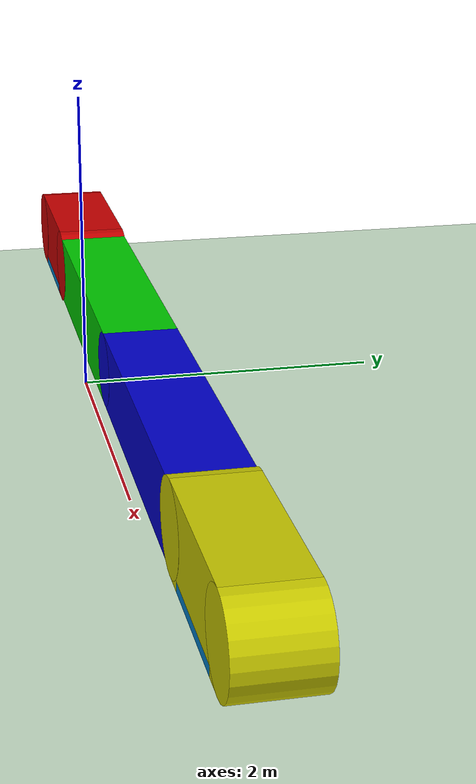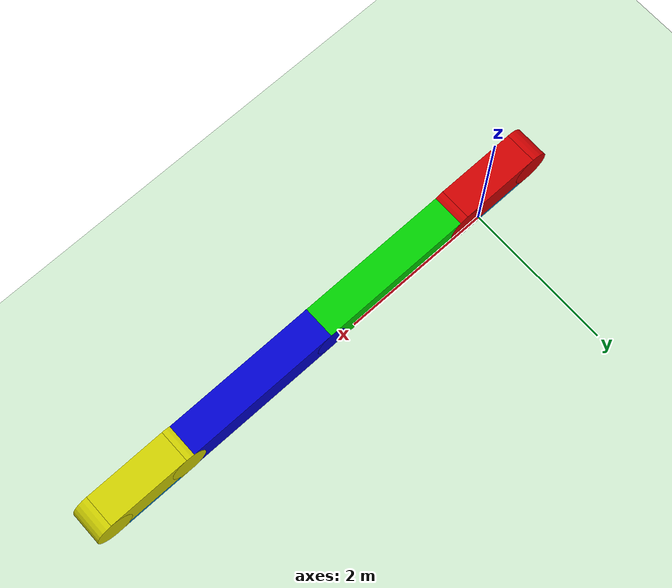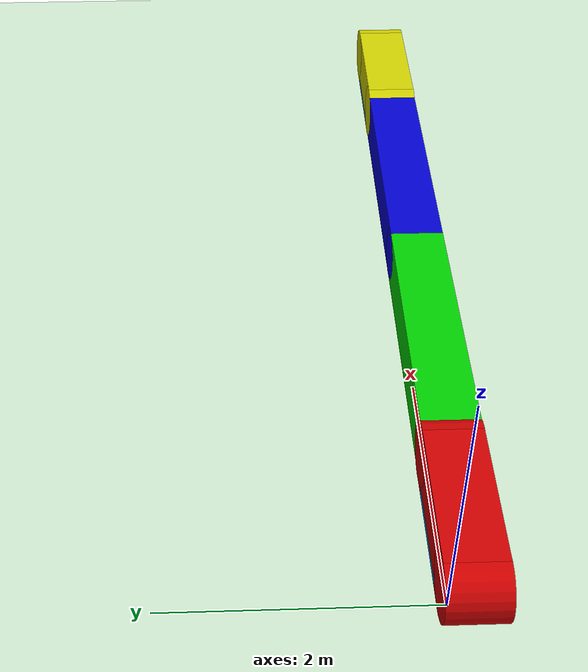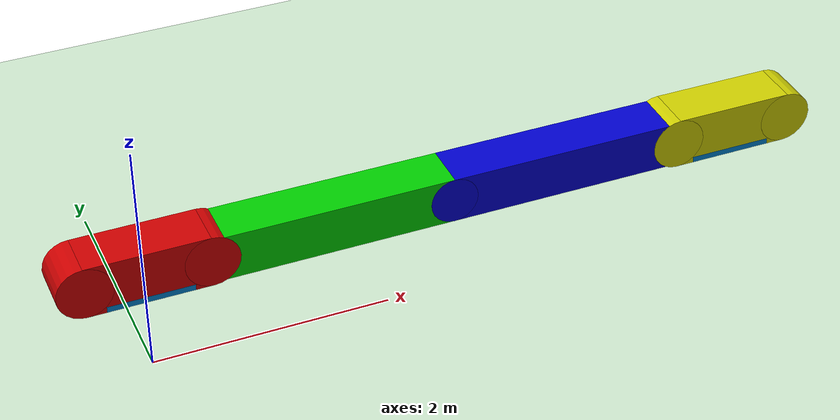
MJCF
<!-- Schema reference -->
<?xml-model href="https://raw.githubusercontent.com/CommonWealthRobotics/mujoco-xml-schema-mjcf/main/mujoco.xsd"?>

<!--A creature xml environment in MuJoCo-->
<mujoco model="2d_creature">
  <!--
  `inertiafromgeom` specifies whether body masses and inertias are inferred from their attached geoms
  or defined by explicit attribute values
  -->
  <compiler angle="degree" inertiafromgeom="true" />

  <option integrator="RK4" timestep="0.002" />

  <!-- Default attribute values for various elements -->
  <default>

    <!-- These joints are the ones connecting the inchworm segments -->
    <default class="connector_joint">
      <joint type="hinge" armature="1" damping="1" limited="true" axis="0 1 0"/>
    </default>

    <geom conaffinity="0" condim="3" density="5.0" friction="1 1 1" margin="0.01" rgba="0.8 0.4 0.8 1" />
    <motor ctrllimited="true" ctrlrange="-1.0 1.0" gear="100" />
  </default>

  <!-- Visual textures and materials -->
  <asset>
    <!-- The skybox texture -->
    <texture builtin="gradient" height="100" rgb1="1 1 1" rgb2="0 0 0" type="skybox" width="100" />

    <!--
    The checker texture used for the floor material.
    `height` and `width` determine the resolution
    -->
    <texture name="checker_tex" builtin="checker" type="2d" rgb1="0 0 0" rgb2="0.8 0.8 0.8" height="100" width="100" />

    <!--
    The checker material used for the floor geom.
    `texrepeat` determines the pattern scaling
    -->
    <material name="checker_mat" texture="checker_tex" texrepeat="1.5 1.5" texuniform="true" reflectance="0.5" shininess="1" specular="1" />
  </asset>

  <!-- The physical environment -->
  <worldbody>
    <!-- Light source -->
    <light cutoff="100" diffuse="1 1 1" dir="0 0 -1.3" directional="true" exponent="1" pos="0 0 1.3" specular="0.1 0.1 0.1" />

    <geom type="plane" size="0 8 1" conaffinity="1" condim="3" material="checker_mat" rgba="0.8 0.9 0.8 1" />

    <!-- Segment 1: Left Foot -->
    <body name="left_foot" pos="0 0 1">
      <!-- Left end of foot -->
      <geom type="cylinder" mass="0" size="0.225" fromto="-0.5 -0.201 0 -0.5 0.201 0" rgba="0.8 0 0 1"/>

      <!-- Top of foot -->
      <geom type="box" pos="0 0 0.025" size="0.5 0.2 0.2" rgba="0.8 0 0 1"/>

      <!-- Bottom of foot -->
      <geom type="box" pos="-0.425 0 -0.2" size="0.075 0.2 0.025" rgba="0.8 0 0 1"/>
      <body name="left_gripper" pos="0 0 -0.2">
        <geom name="left_gripper_geom" type="box" size="0.35 0.2 0.025" margin="0.04" gap="0.03" rgba="0 0.5 0.8 1"/>
      </body>
      <geom type="box" pos="0.425 0 -0.2" size="0.075 0.2 0.025" rgba="0.8 0 0 1"/>

      <!-- Right end of foot -->
      <geom type="cylinder" mass="0" size="0.225" fromto="0.5 -0.201 0 0.5 0.201 0" rgba="0.8 0 0 1"/>

      <joint name="hc_joint" type="hinge" axis="0 1 0" />
      <joint name="hsx_joint" type="slide" axis="1 0 0" />
      <joint name="hsz_joint" type="slide" axis="0 0 1" />

      <!-- Segment 2: Left Middle -->
      <body name="left_middle" pos="1.5 0 0">
        <!-- Camera to track the inchworm body (fixed on the left_middle body segment) -->
        <camera name="track" mode="trackcom" pos="1 -10 0.3" xyaxes="1 0 0 0 0 1"/>

        <geom type="box" size="1 0.2 0.2" rgba="0 0.8 0 1"/>
        <body name="mid_point" pos="1 0 0">
          <geom type="cylinder" mass="0" size="0.2" fromto="0 -0.201 0 0 0.201 0" rgba="0 0 0.8 1"/>
        </body>

        <!-- This joint allows the second segment to hinge off the first -->
        <joint name="left_joint" class="connector_joint" pos="-1 0 0" range="-90 0" />

        <!-- Segment 3: Right Middle -->
        <body name="right_middle" pos="2 0 0">
          <geom type="box" size="1 0.2 0.2" rgba="0 0 0.8 1"/>

          <!-- This joint allows the third segment to hinge off the second -->
          <joint name="middle_joint" class="connector_joint" pos="-1 0 0" range="0 150" />

          <!-- Segment 4: Right Foot -->
          <body name="right_foot" pos="1.5 0 0">
            <!-- Left end of foot -->
            <geom type="cylinder" mass="0" size="0.225" fromto="-0.5 -0.201 0 -0.5 0.201 0" rgba="0.8 0.8 0 1"/>

            <!-- Top of foot -->
            <geom type="box" pos="0 0 0.025" size="0.5 0.2 0.2" rgba="0.8 0.8 0 1"/>

            <!-- Bottom of foot -->
            <geom type="box" pos="-0.425 0 -0.2" size="0.075 0.2 0.025" rgba="0.8 0.8 0 1"/>

            <body name="right_gripper" pos="0 0 -0.2">
              <geom name="right_gripper_geom" type="box" size="0.35 0.2 0.025" margin="0.04" gap="0.03" rgba="0 0.5 0.8 1"/>
            </body>

            <geom type="box" pos="0.425 0 -0.2" size="0.075 0.2 0.025" rgba="0.8 0.8 0 1"/>

            <!-- Right end of foot -->
            <geom type="cylinder" mass="0" size="0.225" fromto="0.5 -0.201 0 0.5 0.201 0" rgba="0.8 0.8 0 1"/>

            <!-- This joint allows the fourth segment to hinge off the third -->
            <joint name="right_joint" class="connector_joint" pos="-0.5 0 0" range="-90 0" />

          </body>
        </body>
      </body>
    </body>
  </worldbody>

  <!-- The actuators (the agent's means of interacting with the environment) -->
  <actuator>
    <!-- Motors for the three connector joints -->
    <motor joint="left_joint" />
    <motor joint="middle_joint" />
    <motor joint="right_joint" />

    <!-- Adhesion for the two feet (`gain` is the force of the adhesion) -->
    <adhesion body="left_foot" ctrlrange="0 1" forcelimited="false" gain="10000" />
    <adhesion body="right_foot" ctrlrange="0 1" forcelimited="false" gain="10000" />
  </actuator>
</mujoco>
